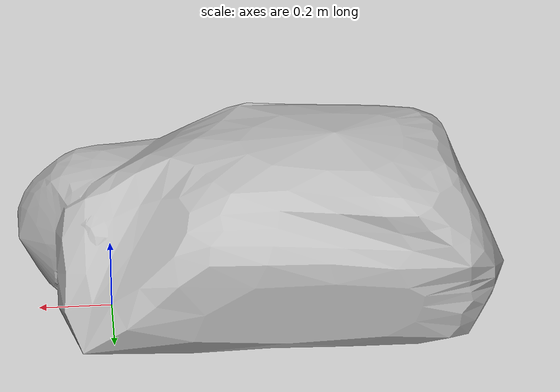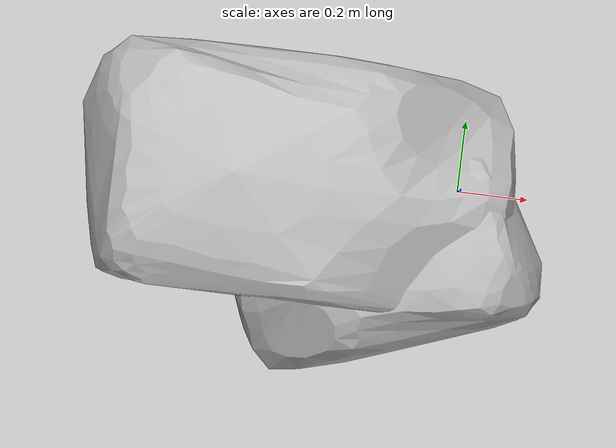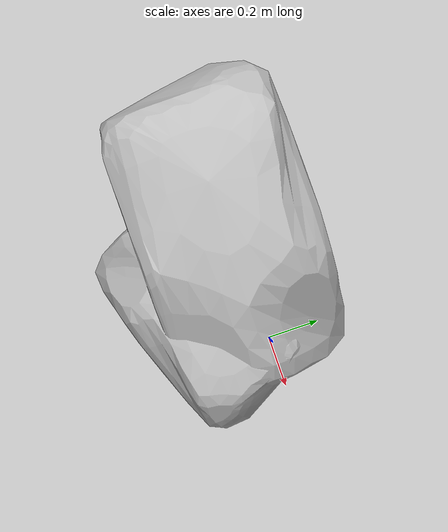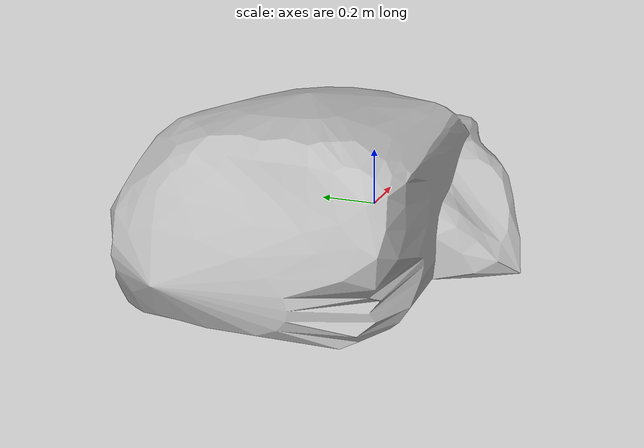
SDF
<?xml version="1.0"?>
<sdf version="1.4">
  <model name="rock1">
    <static>true</static>
    <link name="link">
      <collision name="collision">
        <geometry>
          <mesh>
             <uri>model://rock1/models/rock1.dae</uri>
	<scale>0.3 0.3 0.3</scale>
          </mesh>
        </geometry>
      </collision>
      <visual name="visual">
         <geometry>
          <mesh>
		<uri>model://rock1/models/rock1.dae</uri>
	<scale>0.3 0.3 0.3</scale>
          </mesh>
        </geometry>
      </visual>
    </link>
  </model>
</sdf>
